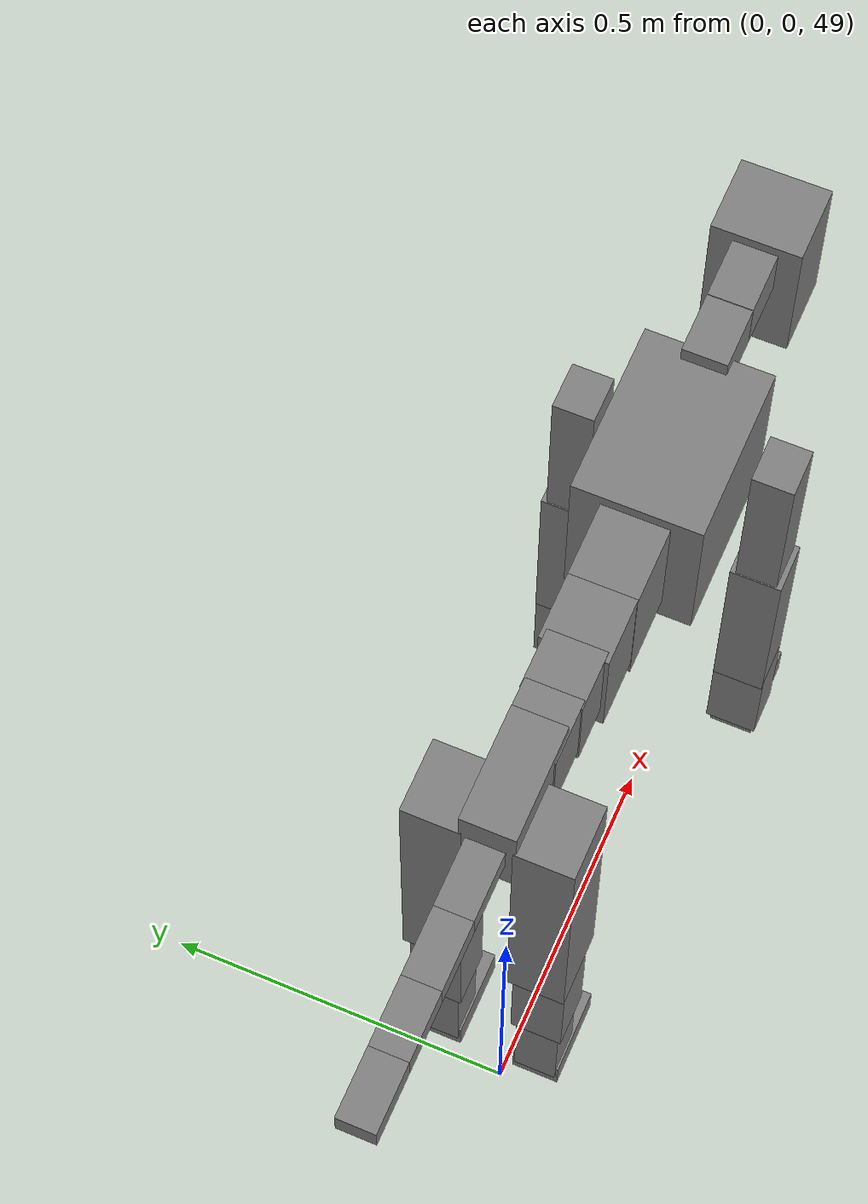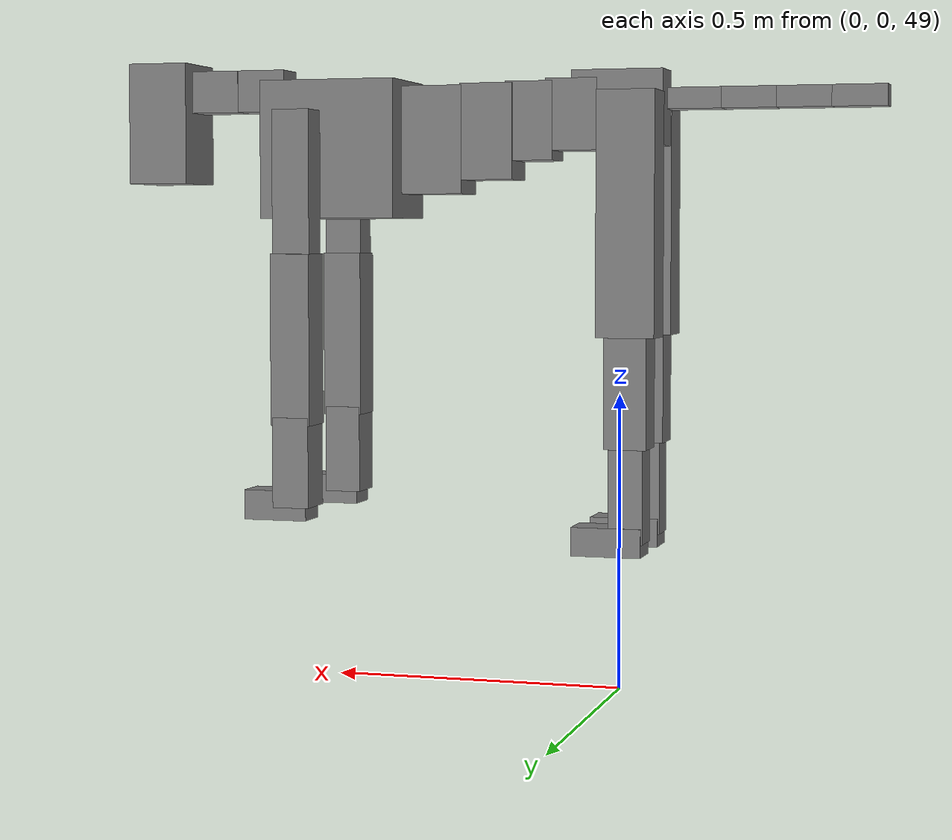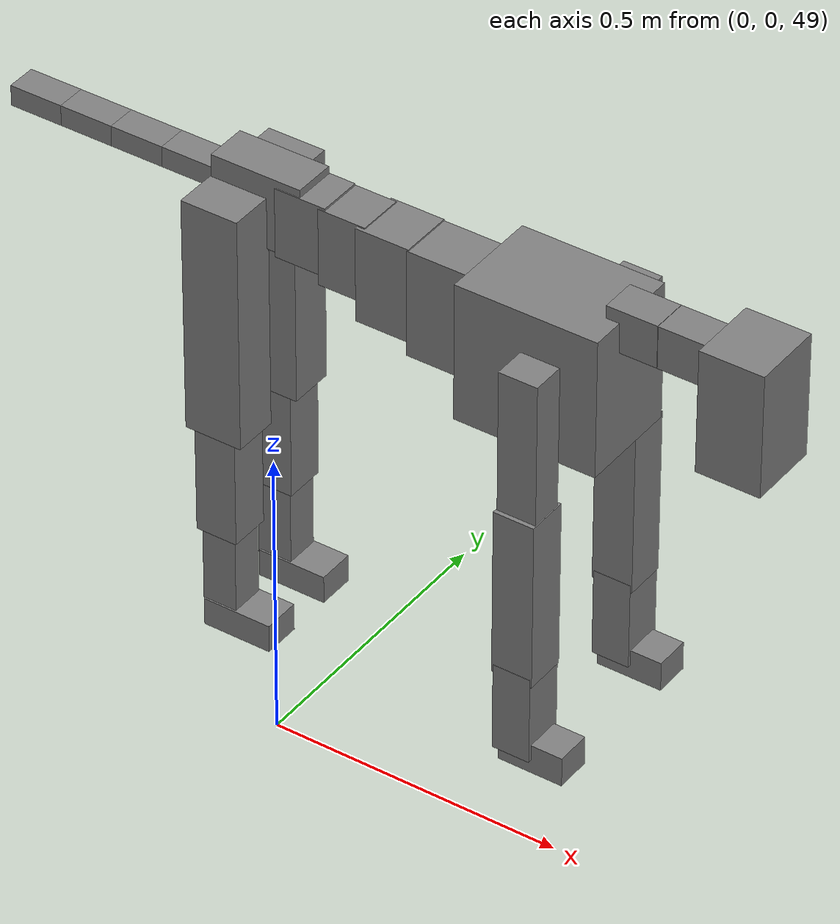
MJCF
<mujoco model="dog">

    <default>
        <joint armature="0.02" stiffness="1" damping="0.2" limited="true"/>
        <geom condim="3" friction="1 0.05 0.05" margin="0.01"/>
        <motor ctrllimited="true" ctrlrange="-1.0 1.0" forcelimited="true" gear="50"/>
    </default>

    <compiler inertiafromgeom="true" angle="radian"/>

    <option timestep="0.016" iterations="50" tolerance="1e-10" solver="Newton" jacobian="dense" cone="pyramidal"/>

    <size nconmax="20000" njmax="60000" nstack="5000000"/>
    <visual>
        <map force="0.1" zfar="30"/>
        <rgba haze="0.15 0.25 0.35 1"/>
        <quality shadowsize="2048"/>
        <global offwidth="800" offheight="800"/>
    </visual>

    <asset>
        <texture type="skybox" builtin="gradient" rgb1="0.3 0.5 0.7" rgb2="0 0 0" width="512" height="512"/>
        <texture name="texplane" type="2d" builtin="checker" rgb1=".2 .3 .4" rgb2=".1 0.15 0.2" width="512" height="512"
                 mark="cross" markrgb=".8 .8 .8"/>
        <texture name="texgeom" type="cube" builtin="flat" mark="cross" width="127" height="1278" rgb1="0.8 0.6 0.4"
                 rgb2="0.8 0.6 0.4" markrgb="1 1 1" random="0.01"/>

        <material name="matplane" reflectance="0.3" texture="texplane" texrepeat="1 1" texuniform="true"/>
        <material name="matgeom" texture="texgeom" texuniform="true" rgba="0.8 0.6 .4 1"/>
    </asset>

    <worldbody>
        <geom name="floor" pos="0 0 0" size="0 0 .25" type="plane" material="matplane" condim="3"/>

        <light directional="false" diffuse=".2 .2 .2" specular="0 0 0" pos="0 0 5" dir="0 0 -1" castshadow="false"/>
        <light mode="targetbodycom" target="torso" directional="false" diffuse=".8 .8 .8" specular="0.3 0.3 0.3"
               pos="0 0 4.0" dir="0 0 -1"/>

        <body name="root" pos="0 0 50">
            <freejoint name="root_1"/>
            <geom type="box" pos="0 0 -0.02" size="0.0774  0.0358  0.063" density="2030"/>

            <body name="spine1" pos="0.054 0 0">
                <joint name="spine1_y" axis="0 1 0" range="0 0.7" limited="true"/>
                <geom type="box" pos="0.02375 0 -0.03" size="0.04375  0.0375  0.05985" density="2030"/>

                <body name="spine2" pos="0.0612 0 0">
                    <joint name="spine2_y" axis="0 1 0" range="-0.15 0.15" limited="true"/>
                    <geom type="box" pos="0.03555  0  -0.04" size="0.04055  0.039  0.06615" density="2030"/>

                    <body name="spine3" pos="0.0730 0 0">
                        <joint name="spine3_y" axis="0 1 0" range="-0.15 0.15" limited="true"/>
                        <geom type="box" pos="0.03555  0  -0.057" size="0.04555  0.0445  0.081" density="2030"/>

                        <body name="spine4" pos="0.0780 0 0">
                            <joint name="spine4_y" axis="0 1 0" range="-0.15 0.15" limited="true"/>
                            <geom type="box" pos="0.05265  0  -0.07" size="0.05265  0.045  0.09135" density="2030"/>

                            <body name="torso" pos="0.1082 0 0">
                                <joint name="torso_y" axis="0 1 0" range="-0.15 0.15" limited="true"/>
                                <geom type="box" pos="0.11925  0  -0.085" size="0.11925  0.085  0.11745"
                                      density="2030"/>

                                <body name="neck1" pos="0.2160  0   0.0180">
                                    <joint name="neck1_y" axis="0 1 0" range="-1.2  -1" limited="true"/>
                                    <geom type="box" pos="0.0423  0  0" size="0.0423  0.03  0.036" density="2325"/>

                                    <body name="neck2" pos="0.0853  0  0">
                                        <joint name="neck2_y" axis="0 1 0" range="0.1  0" limited="true"/>
                                        <geom type="box" pos="0.0423  0  0" size="0.0423  0.03  0.036" density="2325"/>

                                        <body name="head" pos="0.0853  0  0">
                                            <joint name="head_y" axis="0 1 0" range="-0.3  -0.2" limited="true"/>
                                            <geom type="box" pos="0.0531  0  -0.055" size="0.0531  0.06  0.1044"
                                                  density="4030"/>

                                        </body>
                                    </body>
                                </body>

                                <body name="front_shoulder" pos="0.156  0   -0.0480">
                                    <joint name="front_shoulder_y" axis="0 1 0" range="-1 1.5" limited="true"/>
                                    <geom type="box" pos="0 0.13 -0.1075" size="0.0325  0.0278  0.1341" density="1158"/>
                                    <geom type="box" pos="0 -0.13 -0.1075" size="0.0325  0.0278  0.1341"
                                          density="1158"/>

                                    <body name="front_elbow" pos="0  0  -0.2149">
                                        <joint name="front_elbow_y" axis="0 1 0" range="-2 0" limited="true"/>
                                        <geom type="box" pos="0 0.13 -0.1440" size="0.0342  0.0349  0.1440"
                                              density="1081"/>
                                        <geom type="box" pos="0 -0.13 -0.1440" size="0.0342  0.0349  0.1440"
                                              density="1081"/>

                                        <body name="front_wrist" pos="0  0  -0.2879">
                                            <joint name="front_wrist_y" axis="0 1 0" range="-0.2 0" limited="true"/>
                                            <geom type="box" pos="0 0.13 -0.0629" size="0.0317  0.0353  0.0760"
                                                  density="1664"/>
                                            <geom type="box" pos="0 -0.13 -0.0629" size="0.0317  0.0353  0.0760"
                                                  density="1664"/>

                                            <body name="front_finger_end" pos="0  0  -0.1258">
                                                <joint name="front_finger_y" axis="0 1 0" range="-0.4 1"
                                                       limited="true"/>
                                                <geom type="box" pos="0.0299  0.13  -0.0101"
                                                      size="0.0549  0.0299  0.0251" density="1515"/>
                                                <geom type="box" pos="0.0299  -0.13  -0.0101"
                                                      size="0.0549  0.0299  0.0251" density="1515"/>

                                            </body>

                                        </body>
                                    </body>
                                </body>

                            </body>
                        </body>
                    </body>
                </body>
            </body>

            <body name="back_hip" pos="-0.03 0 -0.018">
                <joint name="back_hip_y" axis="0 1 0" range="-1.5 0.3" limited="true"/>
                <geom type="box" pos="0 0.07 -0.1794" size="0.0487  0.0382  0.2022" density="1154"/>
                <geom type="box" pos="0 -0.07 -0.1794" size="0.0487  0.0382  0.2022" density="1154"/>

                <body name="back_knee" pos="0  0  -0.3588">
                    <joint name="back_knee_y" axis="0 1 0" range="0 2.8" limited="true"/>
                    <geom type="box" pos="0 0.07 -0.0954" size="0.0353  0.0348  0.1110" density="1227"/>
                    <geom type="box" pos="0 -0.07 -0.0954" size="0.0353  0.0348  0.1110" density="1227"/>

                    <body name="back_ankle" pos="0  0  -0.1909">
                        <joint name="back_ankle_y" axis="0 1 0" range="-2.2 0" limited="true"/>
                        <geom type="box" pos="0 0.07 -0.0804" size="0.0291  0.0291  0.0916" density="1284"/>
                        <geom type="box" pos="0 -0.07 -0.0804" size="0.0291  0.0291  0.0916" density="1284"/>

                        <body name="back_toe_end" pos="0  0  -0.1607">
                            <joint name="back_toe_y" axis="0 1 0" range="-0.4 1" limited="true"/>
                            <geom type="box" pos="0.0320  0.07  -0.0089" size="0.0586  0.0320  0.0239" density="1515"/>
                            <geom type="box" pos="0.0320  -0.07  -0.0089" size="0.0586  0.0320  0.0239" density="1515"/>

                        </body>
                    </body>
                </body>
            </body>

            <body name="tail1" pos="-0.074 0 -0.006">
                <joint name="tail1_y" axis="0 1 0" range="-0.2 0.2" limited="true"/>
                <geom type="box" pos="-0.0536  0  0" size="0.045  0.025  0.0175" density="1587"/>

                <body name="tail2" pos="-0.09 0 0">
                    <joint name="tail2_y" axis="0 1 0" range="-0.2 0.2" limited="true"/>
                    <geom type="box" pos="-0.0536  0  0" size="0.045  0.025  0.0175" density="1587"/>

                    <body name="tail3" pos="-0.09 0 0">
                        <joint name="tail3_y" axis="0 1 0" range="-0.2 0.2" limited="true"/>
                        <geom type="box" pos="-0.0536  0  0" size="0.045  0.025  0.0175" density="1587"/>

                        <body name="tail4" pos="-0.09 0 0">
                            <joint name="tail4_y" axis="0 1 0" range="-0.2 0.2" limited="true"/>
                            <geom type="box" pos="-0.0536  0  0" size="0.045  0.025  0.0175" density="1587"/>

                        </body>
                    </body>
                </body>
            </body>
        </body>
    </worldbody>

    <actuator>
        <motor joint="spine1_y" forcerange="-150 150     "/>
        <motor joint="spine2_y" forcerange="-150 150     "/>
        <motor joint="spine3_y" forcerange="-150 150     "/>
        <motor joint="spine4_y" forcerange="-150 150     "/>
        <motor joint="torso_y" forcerange="-150 150     "/>
        <motor joint="neck1_y" forcerange="-100 100       "/>
        <motor joint="neck2_y" forcerange="-100 100       "/>
        <motor joint="head_y" forcerange="-150 150       "/>
        <motor joint="front_shoulder_y" forcerange="-138.57 146.47"/>
        <motor joint="front_elbow_y" forcerange="-175.63 178.53"/>
        <motor joint="front_wrist_y" forcerange="-136.96 145.21"/>
        <motor joint="front_finger_y" forcerange="-64.64 55.04"/>
        <motor joint="back_hip_y" forcerange="-320.07 389.54"/>
        <motor joint="back_knee_y" forcerange="-355.69 349.91"/>
        <motor joint="back_angle_y" forcerange="-139.00 227.18"/>
        <motor joint="back_toe_y" forcerange="-80.25 95.44"/>
        <motor joint="tail1_y" forcerange="-50 50     "/>
        <motor joint="tail2_y" forcerange="-50 50     "/>
        <motor joint="tail3_y" forcerange="-50 50     "/>
        <motor joint="tail4_y" forcerange="-50 50     "/>
    </actuator>
</mujoco>
